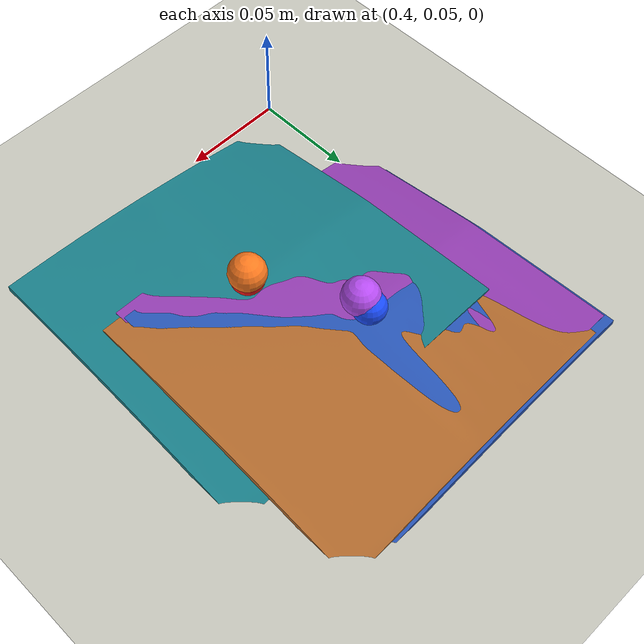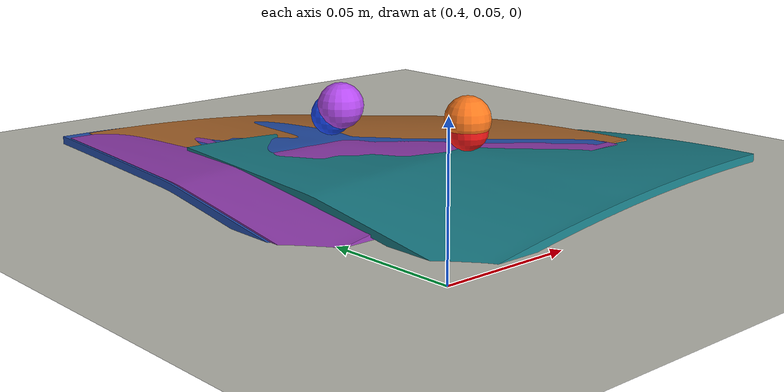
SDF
<?xml version="1.0" ?>
<sdf version="1.7">
  <world name="ur10e_step5_table_world">
    <gravity>0 0 -9.81</gravity>

    <plugin filename="gz-sim-physics-system" name="gz::sim::systems::Physics"/>
    <plugin filename="gz-sim-scene-broadcaster-system" name="gz::sim::systems::SceneBroadcaster"/>
    <plugin filename="gz-sim-user-commands-system" name="gz::sim::systems::UserCommands"/>

    <light type="directional" name="sun">
      <cast_shadows>true</cast_shadows>
      <pose>0 0 6 0 0 0</pose>
      <diffuse>0.8 0.8 0.8 1</diffuse>
      <specular>0.2 0.2 0.2 1</specular>
      <direction>-0.4 0.2 -0.9</direction>
    </light>

    <model name="ground_plane">
      <static>true</static>
      <link name="link">
        <collision name="collision">
          <geometry>
            <plane>
              <normal>0 0 1</normal>
              <size>4 4</size>
            </plane>
          </geometry>
        </collision>
        <visual name="visual">
          <geometry>
            <plane>
              <normal>0 0 1</normal>
              <size>4 4</size>
            </plane>
          </geometry>
          <material>
            <ambient>0.78 0.78 0.74 1</ambient>
            <diffuse>0.78 0.78 0.74 1</diffuse>
          </material>
        </visual>
      </link>
    </model>

    <!-- Step5 contact surface: top z equals retained first-contact evidence z. -->
    <model name="step5_contact_surface">
      <static>true</static>
      <pose>0.487795411149049 0.12932679270060748 0.0040224195 0 0 0</pose>
      <link name="surface">
        <collision name="collision">
          <geometry>
            <box>
              <size>0.18 0.10 0.008044839</size>
            </box>
          </geometry>
          <surface>
            <contact>
              <ode>
                <kp>1000000</kp>
                <kd>100</kd>
              </ode>
            </contact>
            <friction>
              <ode>
                <mu>1.0</mu>
                <mu2>1.0</mu2>
              </ode>
            </friction>
          </surface>
        </collision>
        <visual name="real_surface_mesh_visual">
          <pose>0.0364678879 0.075 -0.0968663777 1.57079632679 0 0</pose>
          <geometry>
            <mesh>
              <uri>package://ur10e_example_controllers/meshes/contact_surface/two_piece_surface_smooth_v11_3mm_thick.stl</uri>
              <scale>0.001 0.001 0.001</scale>
            </mesh>
          </geometry>
          <material>
            <ambient>0.1 0.34 0.35 1</ambient>
            <diffuse>0.1 0.50 0.54 1</diffuse>
          </material>
        </visual>
      </link>
    </model>

    <model name="step5_safe_frame_origin_marker">
      <static>true</static>
      <pose>0.487795411149049 0.12932679270060748 0.020 0 0 0</pose>
      <link name="marker">
        <visual name="visual">
          <geometry>
            <sphere>
              <radius>0.008</radius>
            </sphere>
          </geometry>
          <material>
            <ambient>0.8 0.1 0.1 1</ambient>
            <diffuse>1.0 0.1 0.1 1</diffuse>
          </material>
        </visual>
      </link>
    </model>

    <!-- Step6 contact surface: shared offline marker for the Step6 safe frame. -->
    <model name="step6_contact_surface">
      <static>true</static>
      <pose>0.4620551816200707 0.17788259636165896 0.0040224195 0 0 0</pose>
      <link name="surface">
        <collision name="collision">
          <geometry>
            <box>
              <size>0.14 0.11 0.008044839</size>
            </box>
          </geometry>
          <surface>
            <contact>
              <ode>
                <kp>1000000</kp>
                <kd>100</kd>
              </ode>
            </contact>
            <friction>
              <ode>
                <mu>1.0</mu>
                <mu2>1.0</mu2>
              </ode>
            </friction>
          </surface>
        </collision>
        <visual name="real_surface_mesh_visual">
          <pose>0.0364678879 0.075 -0.0968663777 1.57079632679 0 0</pose>
          <geometry>
            <mesh>
              <uri>package://ur10e_example_controllers/meshes/contact_surface/two_piece_surface_smooth_v11_3mm_thick.stl</uri>
              <scale>0.001 0.001 0.001</scale>
            </mesh>
          </geometry>
          <material>
            <ambient>0.16 0.28 0.58 1</ambient>
            <diffuse>0.16 0.34 0.72 1</diffuse>
          </material>
        </visual>
      </link>
    </model>

    <model name="step6_safe_frame_origin_marker">
      <static>true</static>
      <pose>0.4620551816200707 0.17788259636165896 0.022 0 0 0</pose>
      <link name="marker">
        <visual name="visual">
          <geometry>
            <sphere>
              <radius>0.008</radius>
            </sphere>
          </geometry>
          <material>
            <ambient>0.1 0.2 0.8 1</ambient>
            <diffuse>0.1 0.3 1.0 1</diffuse>
          </material>
        </visual>
      </link>
    </model>

    <!-- Step7 large-platform cycloid Gazebo-only contact surface. -->
    <model name="step7_large_platform_contact_surface">
      <static>true</static>
      <pose>0.47254 0.17642 0.0040224195 0 0 0</pose>
      <link name="surface">
        <collision name="collision">
          <geometry>
            <box>
              <size>0.16 0.18 0.008044839</size>
            </box>
          </geometry>
          <surface>
            <contact>
              <ode>
                <kp>1000000</kp>
                <kd>100</kd>
              </ode>
            </contact>
            <friction>
              <ode>
                <mu>1.0</mu>
                <mu2>1.0</mu2>
              </ode>
            </friction>
          </surface>
        </collision>
        <visual name="real_surface_mesh_visual">
          <pose>0.0364678879 0.075 -0.0968663777 1.57079632679 0 0</pose>
          <geometry>
            <mesh>
              <uri>package://ur10e_example_controllers/meshes/contact_surface/two_piece_surface_smooth_v11_3mm_thick.stl</uri>
              <scale>0.001 0.001 0.001</scale>
            </mesh>
          </geometry>
          <material>
            <ambient>0.40 0.24 0.12 1</ambient>
            <diffuse>0.70 0.42 0.18 1</diffuse>
          </material>
        </visual>
      </link>
    </model>

    <model name="step7_large_platform_origin_marker">
      <static>true</static>
      <pose>0.487795411149049 0.12932679270060748 0.024 0 0 0</pose>
      <link name="marker">
        <visual name="visual">
          <geometry>
            <sphere>
              <radius>0.009</radius>
            </sphere>
          </geometry>
          <material>
            <ambient>0.78 0.35 0.08 1</ambient>
            <diffuse>1.0 0.48 0.12 1</diffuse>
          </material>
        </visual>
      </link>
    </model>

    <!-- Step8 large-platform eight Gazebo-only contact surface. -->
    <model name="step8_large_platform_contact_surface">
      <static>true</static>
      <pose>0.462875 0.173395 0.0040224195 0 0 0</pose>
      <link name="surface">
        <collision name="collision">
          <geometry>
            <box>
              <size>0.17 0.17 0.008044839</size>
            </box>
          </geometry>
          <surface>
            <contact>
              <ode>
                <kp>1000000</kp>
                <kd>100</kd>
              </ode>
            </contact>
            <friction>
              <ode>
                <mu>1.0</mu>
                <mu2>1.0</mu2>
              </ode>
            </friction>
          </surface>
        </collision>
        <visual name="real_surface_mesh_visual">
          <pose>0.0364678879 0.075 -0.0968663777 1.57079632679 0 0</pose>
          <geometry>
            <mesh>
              <uri>package://ur10e_example_controllers/meshes/contact_surface/two_piece_surface_smooth_v11_3mm_thick.stl</uri>
              <scale>0.001 0.001 0.001</scale>
            </mesh>
          </geometry>
          <material>
            <ambient>0.34 0.14 0.38 1</ambient>
            <diffuse>0.58 0.24 0.70 1</diffuse>
          </material>
        </visual>
      </link>
    </model>

    <model name="step8_large_platform_origin_marker">
      <static>true</static>
      <pose>0.462875 0.173395 0.026 0 0 0</pose>
      <link name="marker">
        <visual name="visual">
          <geometry>
            <sphere>
              <radius>0.009</radius>
            </sphere>
          </geometry>
          <material>
            <ambient>0.55 0.20 0.72 1</ambient>
            <diffuse>0.72 0.30 0.95 1</diffuse>
          </material>
        </visual>
      </link>
    </model>
  </world>
</sdf>
